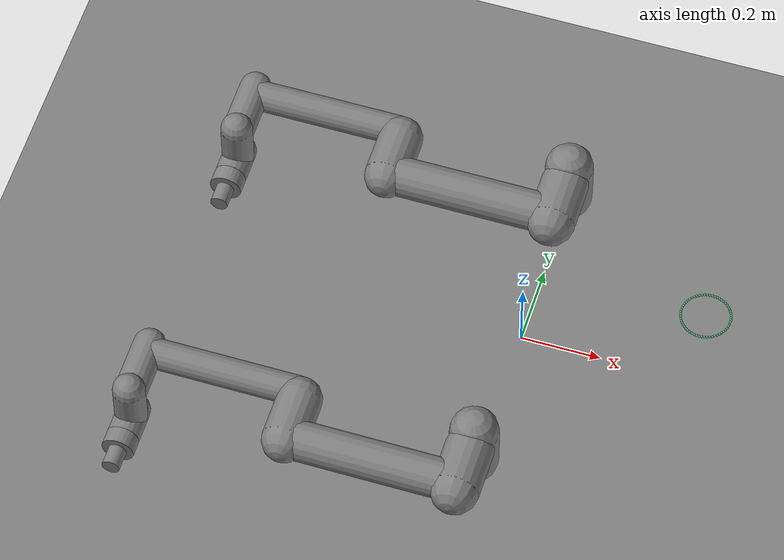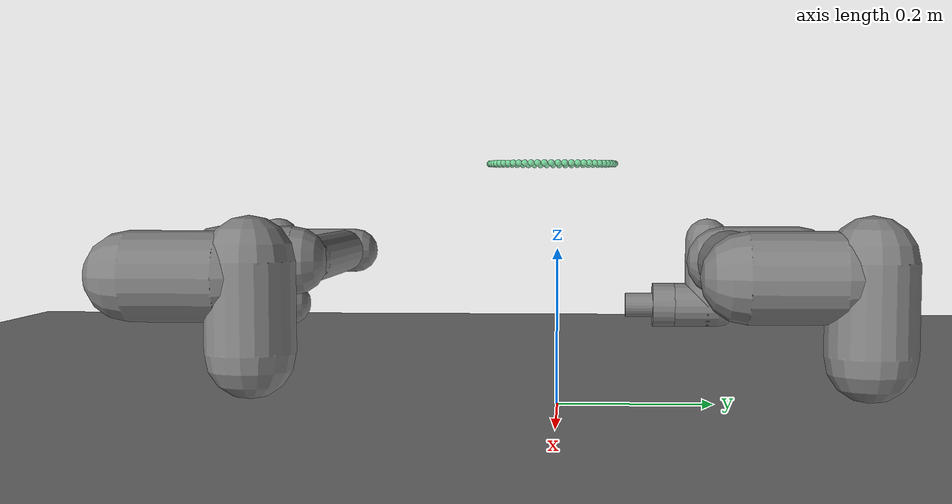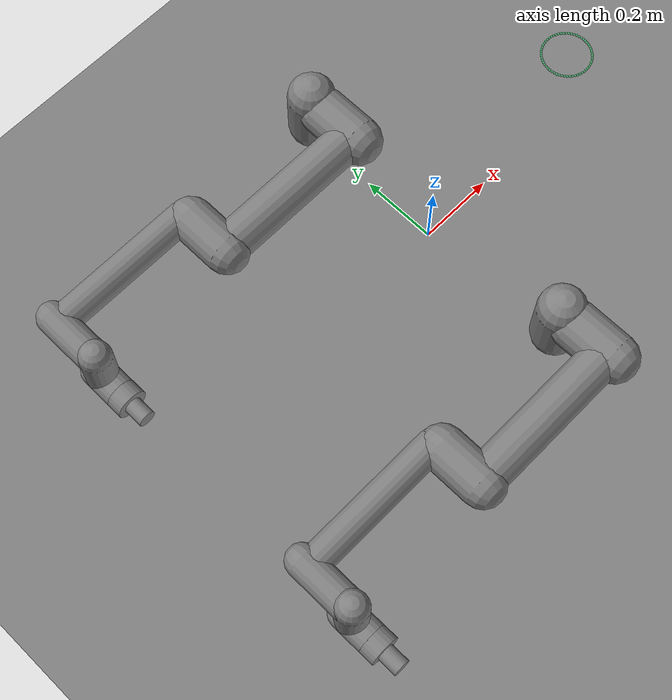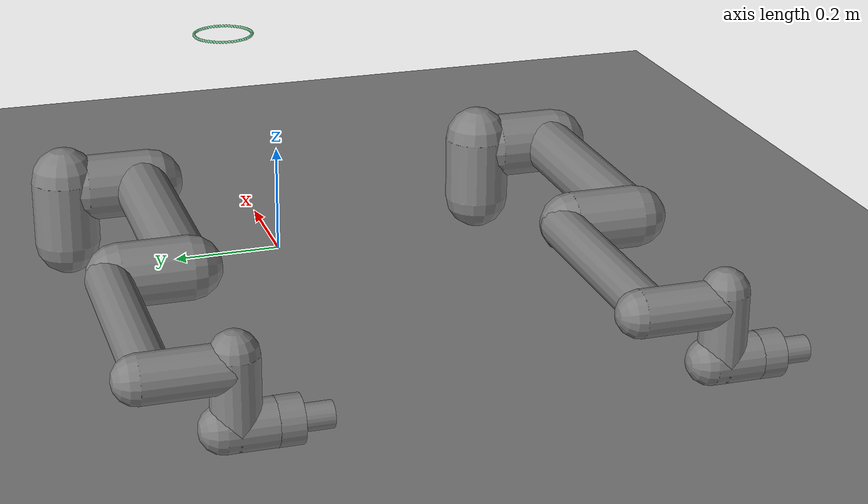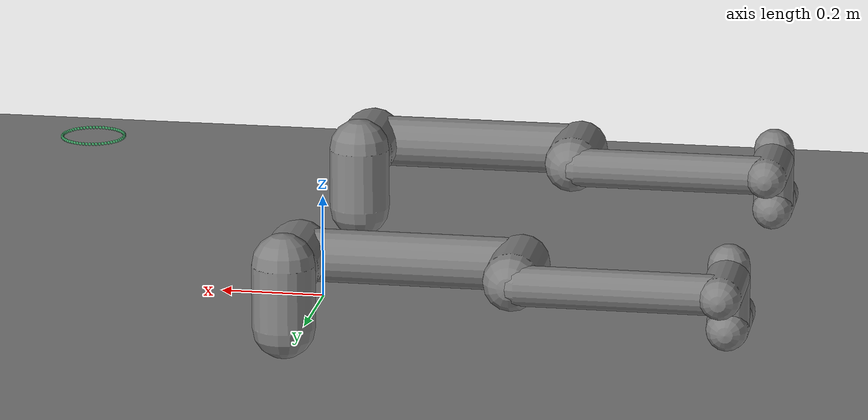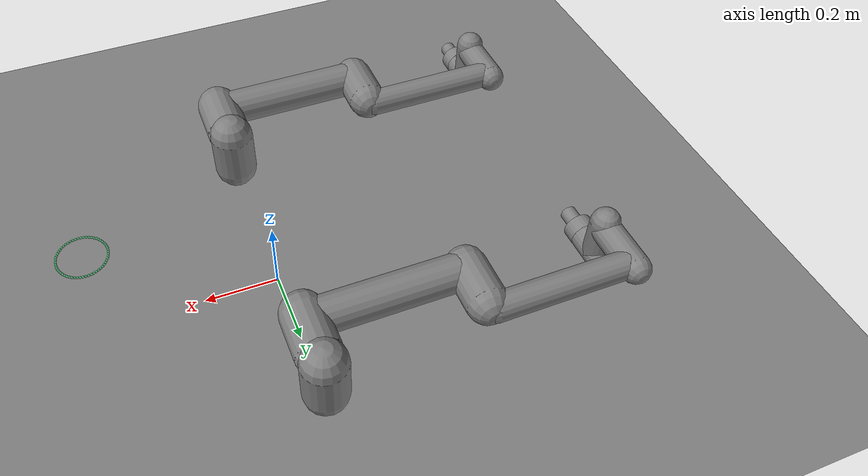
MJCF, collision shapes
<mujoco model="dual_arm_scene">
  <compiler angle="radian"/>

  <option timestep="0.005" integrator="implicitfast"/>

  <visual>
    <global offwidth="960" offheight="720"/>
  </visual>

  <default>
    <default class="armA_main">
      <default class="armA_ur5e">
        <material shininess="0.25"/>
        <joint range="-6.28319 6.28319" armature="0.1"/>
        <site size="0.001 0.005 0.005" group="4" rgba="0.5 0.5 0.5 0.3"/>
        <general ctrlrange="-6.2831 6.2831" forcerange="-150 150" biastype="affine" gainprm="2000" biasprm="0 -2000 -400"/>
        <default class="armA_size3">
          <default class="armA_size3_limited">
            <joint range="-3.1415 3.1415"/>
            <general ctrlrange="-3.1415 3.1415"/>
          </default>
        </default>
        <default class="armA_size1">
          <general forcerange="-28 28" gainprm="500" biasprm="0 -500 -100"/>
        </default>
        <default class="armA_visual">
          <geom type="mesh" contype="0" conaffinity="0" group="2"/>
        </default>
        <default class="armA_collision">
          <geom type="capsule" group="3"/>
          <default class="armA_eef_collision">
            <geom type="cylinder"/>
          </default>
        </default>
      </default>
    </default>
    <default class="armB_main">
      <default class="armB_ur5e">
        <material shininess="0.25"/>
        <joint range="-6.28319 6.28319" armature="0.1"/>
        <site size="0.001 0.005 0.005" group="4" rgba="0.5 0.5 0.5 0.3"/>
        <general ctrlrange="-6.2831 6.2831" forcerange="-150 150" biastype="affine" gainprm="2000" biasprm="0 -2000 -400"/>
        <default class="armB_size3">
          <default class="armB_size3_limited">
            <joint range="-3.1415 3.1415"/>
            <general ctrlrange="-3.1415 3.1415"/>
          </default>
        </default>
        <default class="armB_size1">
          <general forcerange="-28 28" gainprm="500" biasprm="0 -500 -100"/>
        </default>
        <default class="armB_visual">
          <geom type="mesh" contype="0" conaffinity="0" group="2"/>
        </default>
        <default class="armB_collision">
          <geom type="capsule" group="3"/>
          <default class="armB_eef_collision">
            <geom type="cylinder"/>
          </default>
        </default>
      </default>
    </default>
  </default>

  <asset>
    <material name="armA_black" class="armA_ur5e" rgba="0.033 0.033 0.033 1"/>
    <material name="armA_jointgray" class="armA_ur5e" rgba="0.278 0.278 0.278 1"/>
    <material name="armA_linkgray" class="armA_ur5e" rgba="0.82 0.82 0.82 1"/>
    <material name="armA_urblue" class="armA_ur5e" rgba="0.49 0.678 0.8 1"/>
    <material name="armB_black" class="armB_ur5e" rgba="0.033 0.033 0.033 1"/>
    <material name="armB_jointgray" class="armB_ur5e" rgba="0.278 0.278 0.278 1"/>
    <material name="armB_linkgray" class="armB_ur5e" rgba="0.82 0.82 0.82 1"/>
    <material name="armB_urblue" class="armB_ur5e" rgba="0.49 0.678 0.8 1"/>
    <mesh name="armA_base_0" content_type="model/obj" file="C:\Users/aarl0/OneDrive - University of Nebraska/Desktop/PhD/Job/Untitled Folder/manipulator/ur5e_pick_place/ur5e_pick_place/model/assets/base_0.obj"/>
    <mesh name="armA_base_1" content_type="model/obj" file="C:\Users/aarl0/OneDrive - University of Nebraska/Desktop/PhD/Job/Untitled Folder/manipulator/ur5e_pick_place/ur5e_pick_place/model/assets/base_1.obj"/>
    <mesh name="armA_shoulder_0" content_type="model/obj" file="C:\Users/aarl0/OneDrive - University of Nebraska/Desktop/PhD/Job/Untitled Folder/manipulator/ur5e_pick_place/ur5e_pick_place/model/assets/shoulder_0.obj"/>
    <mesh name="armA_shoulder_1" content_type="model/obj" file="C:\Users/aarl0/OneDrive - University of Nebraska/Desktop/PhD/Job/Untitled Folder/manipulator/ur5e_pick_place/ur5e_pick_place/model/assets/shoulder_1.obj"/>
    <mesh name="armA_shoulder_2" content_type="model/obj" file="C:\Users/aarl0/OneDrive - University of Nebraska/Desktop/PhD/Job/Untitled Folder/manipulator/ur5e_pick_place/ur5e_pick_place/model/assets/shoulder_2.obj"/>
    <mesh name="armA_upperarm_0" content_type="model/obj" file="C:\Users/aarl0/OneDrive - University of Nebraska/Desktop/PhD/Job/Untitled Folder/manipulator/ur5e_pick_place/ur5e_pick_place/model/assets/upperarm_0.obj"/>
    <mesh name="armA_upperarm_1" content_type="model/obj" file="C:\Users/aarl0/OneDrive - University of Nebraska/Desktop/PhD/Job/Untitled Folder/manipulator/ur5e_pick_place/ur5e_pick_place/model/assets/upperarm_1.obj"/>
    <mesh name="armA_upperarm_2" content_type="model/obj" file="C:\Users/aarl0/OneDrive - University of Nebraska/Desktop/PhD/Job/Untitled Folder/manipulator/ur5e_pick_place/ur5e_pick_place/model/assets/upperarm_2.obj"/>
    <mesh name="armA_upperarm_3" content_type="model/obj" file="C:\Users/aarl0/OneDrive - University of Nebraska/Desktop/PhD/Job/Untitled Folder/manipulator/ur5e_pick_place/ur5e_pick_place/model/assets/upperarm_3.obj"/>
    <mesh name="armA_forearm_0" content_type="model/obj" file="C:\Users/aarl0/OneDrive - University of Nebraska/Desktop/PhD/Job/Untitled Folder/manipulator/ur5e_pick_place/ur5e_pick_place/model/assets/forearm_0.obj"/>
    <mesh name="armA_forearm_1" content_type="model/obj" file="C:\Users/aarl0/OneDrive - University of Nebraska/Desktop/PhD/Job/Untitled Folder/manipulator/ur5e_pick_place/ur5e_pick_place/model/assets/forearm_1.obj"/>
    <mesh name="armA_forearm_2" content_type="model/obj" file="C:\Users/aarl0/OneDrive - University of Nebraska/Desktop/PhD/Job/Untitled Folder/manipulator/ur5e_pick_place/ur5e_pick_place/model/assets/forearm_2.obj"/>
    <mesh name="armA_forearm_3" content_type="model/obj" file="C:\Users/aarl0/OneDrive - University of Nebraska/Desktop/PhD/Job/Untitled Folder/manipulator/ur5e_pick_place/ur5e_pick_place/model/assets/forearm_3.obj"/>
    <mesh name="armA_wrist1_0" content_type="model/obj" file="C:\Users/aarl0/OneDrive - University of Nebraska/Desktop/PhD/Job/Untitled Folder/manipulator/ur5e_pick_place/ur5e_pick_place/model/assets/wrist1_0.obj"/>
    <mesh name="armA_wrist1_1" content_type="model/obj" file="C:\Users/aarl0/OneDrive - University of Nebraska/Desktop/PhD/Job/Untitled Folder/manipulator/ur5e_pick_place/ur5e_pick_place/model/assets/wrist1_1.obj"/>
    <mesh name="armA_wrist1_2" content_type="model/obj" file="C:\Users/aarl0/OneDrive - University of Nebraska/Desktop/PhD/Job/Untitled Folder/manipulator/ur5e_pick_place/ur5e_pick_place/model/assets/wrist1_2.obj"/>
    <mesh name="armA_wrist2_0" content_type="model/obj" file="C:\Users/aarl0/OneDrive - University of Nebraska/Desktop/PhD/Job/Untitled Folder/manipulator/ur5e_pick_place/ur5e_pick_place/model/assets/wrist2_0.obj"/>
    <mesh name="armA_wrist2_1" content_type="model/obj" file="C:\Users/aarl0/OneDrive - University of Nebraska/Desktop/PhD/Job/Untitled Folder/manipulator/ur5e_pick_place/ur5e_pick_place/model/assets/wrist2_1.obj"/>
    <mesh name="armA_wrist2_2" content_type="model/obj" file="C:\Users/aarl0/OneDrive - University of Nebraska/Desktop/PhD/Job/Untitled Folder/manipulator/ur5e_pick_place/ur5e_pick_place/model/assets/wrist2_2.obj"/>
    <mesh name="armA_wrist3" content_type="model/obj" file="C:\Users/aarl0/OneDrive - University of Nebraska/Desktop/PhD/Job/Untitled Folder/manipulator/ur5e_pick_place/ur5e_pick_place/model/assets/wrist3.obj"/>
    <mesh name="armB_base_0" file="C:\Users/aarl0/OneDrive - University of Nebraska/Desktop/PhD/Job/Untitled Folder/manipulator/ur5e_pick_place/ur5e_pick_place/model/assets/base_0.obj"/>
    <mesh name="armB_base_1" file="C:\Users/aarl0/OneDrive - University of Nebraska/Desktop/PhD/Job/Untitled Folder/manipulator/ur5e_pick_place/ur5e_pick_place/model/assets/base_1.obj"/>
    <mesh name="armB_shoulder_0" file="C:\Users/aarl0/OneDrive - University of Nebraska/Desktop/PhD/Job/Untitled Folder/manipulator/ur5e_pick_place/ur5e_pick_place/model/assets/shoulder_0.obj"/>
    <mesh name="armB_shoulder_1" file="C:\Users/aarl0/OneDrive - University of Nebraska/Desktop/PhD/Job/Untitled Folder/manipulator/ur5e_pick_place/ur5e_pick_place/model/assets/shoulder_1.obj"/>
    <mesh name="armB_shoulder_2" file="C:\Users/aarl0/OneDrive - University of Nebraska/Desktop/PhD/Job/Untitled Folder/manipulator/ur5e_pick_place/ur5e_pick_place/model/assets/shoulder_2.obj"/>
    <mesh name="armB_upperarm_0" file="C:\Users/aarl0/OneDrive - University of Nebraska/Desktop/PhD/Job/Untitled Folder/manipulator/ur5e_pick_place/ur5e_pick_place/model/assets/upperarm_0.obj"/>
    <mesh name="armB_upperarm_1" file="C:\Users/aarl0/OneDrive - University of Nebraska/Desktop/PhD/Job/Untitled Folder/manipulator/ur5e_pick_place/ur5e_pick_place/model/assets/upperarm_1.obj"/>
    <mesh name="armB_upperarm_2" file="C:\Users/aarl0/OneDrive - University of Nebraska/Desktop/PhD/Job/Untitled Folder/manipulator/ur5e_pick_place/ur5e_pick_place/model/assets/upperarm_2.obj"/>
    <mesh name="armB_upperarm_3" file="C:\Users/aarl0/OneDrive - University of Nebraska/Desktop/PhD/Job/Untitled Folder/manipulator/ur5e_pick_place/ur5e_pick_place/model/assets/upperarm_3.obj"/>
    <mesh name="armB_forearm_0" file="C:\Users/aarl0/OneDrive - University of Nebraska/Desktop/PhD/Job/Untitled Folder/manipulator/ur5e_pick_place/ur5e_pick_place/model/assets/forearm_0.obj"/>
    <mesh name="armB_forearm_1" file="C:\Users/aarl0/OneDrive - University of Nebraska/Desktop/PhD/Job/Untitled Folder/manipulator/ur5e_pick_place/ur5e_pick_place/model/assets/forearm_1.obj"/>
    <mesh name="armB_forearm_2" file="C:\Users/aarl0/OneDrive - University of Nebraska/Desktop/PhD/Job/Untitled Folder/manipulator/ur5e_pick_place/ur5e_pick_place/model/assets/forearm_2.obj"/>
    <mesh name="armB_forearm_3" file="C:\Users/aarl0/OneDrive - University of Nebraska/Desktop/PhD/Job/Untitled Folder/manipulator/ur5e_pick_place/ur5e_pick_place/model/assets/forearm_3.obj"/>
    <mesh name="armB_wrist1_0" file="C:\Users/aarl0/OneDrive - University of Nebraska/Desktop/PhD/Job/Untitled Folder/manipulator/ur5e_pick_place/ur5e_pick_place/model/assets/wrist1_0.obj"/>
    <mesh name="armB_wrist1_1" file="C:\Users/aarl0/OneDrive - University of Nebraska/Desktop/PhD/Job/Untitled Folder/manipulator/ur5e_pick_place/ur5e_pick_place/model/assets/wrist1_1.obj"/>
    <mesh name="armB_wrist1_2" file="C:\Users/aarl0/OneDrive - University of Nebraska/Desktop/PhD/Job/Untitled Folder/manipulator/ur5e_pick_place/ur5e_pick_place/model/assets/wrist1_2.obj"/>
    <mesh name="armB_wrist2_0" file="C:\Users/aarl0/OneDrive - University of Nebraska/Desktop/PhD/Job/Untitled Folder/manipulator/ur5e_pick_place/ur5e_pick_place/model/assets/wrist2_0.obj"/>
    <mesh name="armB_wrist2_1" content_type="model/obj" file="C:\Users/aarl0/OneDrive - University of Nebraska/Desktop/PhD/Job/Untitled Folder/manipulator/ur5e_pick_place/ur5e_pick_place/model/assets/wrist2_1.obj"/>
    <mesh name="armB_wrist2_2" content_type="model/obj" file="C:\Users/aarl0/OneDrive - University of Nebraska/Desktop/PhD/Job/Untitled Folder/manipulator/ur5e_pick_place/ur5e_pick_place/model/assets/wrist2_2.obj"/>
    <mesh name="armB_wrist3" file="C:\Users/aarl0/OneDrive - University of Nebraska/Desktop/PhD/Job/Untitled Folder/manipulator/ur5e_pick_place/ur5e_pick_place/model/assets/wrist3.obj"/>
  </asset>

  <worldbody>
    <geom size="2 2 0.1" type="plane"/>
    <site name="path_marker_0" pos="0.51 0 0.3" size="0.003" rgba="0.2 0.85 0.45 0.6"/>
    <site name="path_marker_1" pos="0.509671 0.00627171 0.3" size="0.003" rgba="0.2 0.85 0.45 0.6"/>
    <site name="path_marker_2" pos="0.508689 0.0124747 0.3" size="0.003" rgba="0.2 0.85 0.45 0.6"/>
    <site name="path_marker_3" pos="0.507063 0.018541 0.3" size="0.003" rgba="0.2 0.85 0.45 0.6"/>
    <site name="path_marker_4" pos="0.504813 0.0244042 0.3" size="0.003" rgba="0.2 0.85 0.45 0.6"/>
    <site name="path_marker_5" pos="0.501962 0.03 0.3" size="0.003" rgba="0.2 0.85 0.45 0.6"/>
    <site name="path_marker_6" pos="0.498541 0.0352671 0.3" size="0.003" rgba="0.2 0.85 0.45 0.6"/>
    <site name="path_marker_7" pos="0.494589 0.0401478 0.3" size="0.003" rgba="0.2 0.85 0.45 0.6"/>
    <site name="path_marker_8" pos="0.490148 0.0445887 0.3" size="0.003" rgba="0.2 0.85 0.45 0.6"/>
    <site name="path_marker_9" pos="0.485267 0.048541 0.3" size="0.003" rgba="0.2 0.85 0.45 0.6"/>
    <site name="path_marker_10" pos="0.48 0.0519615 0.3" size="0.003" rgba="0.2 0.85 0.45 0.6"/>
    <site name="path_marker_11" pos="0.474404 0.0548127 0.3" size="0.003" rgba="0.2 0.85 0.45 0.6"/>
    <site name="path_marker_12" pos="0.468541 0.0570634 0.3" size="0.003" rgba="0.2 0.85 0.45 0.6"/>
    <site name="path_marker_13" pos="0.462475 0.0586889 0.3" size="0.003" rgba="0.2 0.85 0.45 0.6"/>
    <site name="path_marker_14" pos="0.456272 0.0596713 0.3" size="0.003" rgba="0.2 0.85 0.45 0.6"/>
    <site name="path_marker_15" pos="0.45 0.06 0.3" size="0.003" rgba="0.2 0.85 0.45 0.6"/>
    <site name="path_marker_16" pos="0.443728 0.0596713 0.3" size="0.003" rgba="0.2 0.85 0.45 0.6"/>
    <site name="path_marker_17" pos="0.437525 0.0586889 0.3" size="0.003" rgba="0.2 0.85 0.45 0.6"/>
    <site name="path_marker_18" pos="0.431459 0.0570634 0.3" size="0.003" rgba="0.2 0.85 0.45 0.6"/>
    <site name="path_marker_19" pos="0.425596 0.0548127 0.3" size="0.003" rgba="0.2 0.85 0.45 0.6"/>
    <site name="path_marker_20" pos="0.42 0.0519615 0.3" size="0.003" rgba="0.2 0.85 0.45 0.6"/>
    <site name="path_marker_21" pos="0.414733 0.048541 0.3" size="0.003" rgba="0.2 0.85 0.45 0.6"/>
    <site name="path_marker_22" pos="0.409852 0.0445887 0.3" size="0.003" rgba="0.2 0.85 0.45 0.6"/>
    <site name="path_marker_23" pos="0.405411 0.0401478 0.3" size="0.003" rgba="0.2 0.85 0.45 0.6"/>
    <site name="path_marker_24" pos="0.401459 0.0352671 0.3" size="0.003" rgba="0.2 0.85 0.45 0.6"/>
    <site name="path_marker_25" pos="0.398038 0.03 0.3" size="0.003" rgba="0.2 0.85 0.45 0.6"/>
    <site name="path_marker_26" pos="0.395187 0.0244042 0.3" size="0.003" rgba="0.2 0.85 0.45 0.6"/>
    <site name="path_marker_27" pos="0.392937 0.018541 0.3" size="0.003" rgba="0.2 0.85 0.45 0.6"/>
    <site name="path_marker_28" pos="0.391311 0.0124747 0.3" size="0.003" rgba="0.2 0.85 0.45 0.6"/>
    <site name="path_marker_29" pos="0.390329 0.00627171 0.3" size="0.003" rgba="0.2 0.85 0.45 0.6"/>
    <site name="path_marker_30" pos="0.39 0 0.3" size="0.003" rgba="0.2 0.85 0.45 0.6"/>
    <site name="path_marker_31" pos="0.390329 -0.00627171 0.3" size="0.003" rgba="0.2 0.85 0.45 0.6"/>
    <site name="path_marker_32" pos="0.391311 -0.0124747 0.3" size="0.003" rgba="0.2 0.85 0.45 0.6"/>
    <site name="path_marker_33" pos="0.392937 -0.018541 0.3" size="0.003" rgba="0.2 0.85 0.45 0.6"/>
    <site name="path_marker_34" pos="0.395187 -0.0244042 0.3" size="0.003" rgba="0.2 0.85 0.45 0.6"/>
    <site name="path_marker_35" pos="0.398038 -0.03 0.3" size="0.003" rgba="0.2 0.85 0.45 0.6"/>
    <site name="path_marker_36" pos="0.401459 -0.0352671 0.3" size="0.003" rgba="0.2 0.85 0.45 0.6"/>
    <site name="path_marker_37" pos="0.405411 -0.0401478 0.3" size="0.003" rgba="0.2 0.85 0.45 0.6"/>
    <site name="path_marker_38" pos="0.409852 -0.0445887 0.3" size="0.003" rgba="0.2 0.85 0.45 0.6"/>
    <site name="path_marker_39" pos="0.414733 -0.048541 0.3" size="0.003" rgba="0.2 0.85 0.45 0.6"/>
    <site name="path_marker_40" pos="0.42 -0.0519615 0.3" size="0.003" rgba="0.2 0.85 0.45 0.6"/>
    <site name="path_marker_41" pos="0.425596 -0.0548127 0.3" size="0.003" rgba="0.2 0.85 0.45 0.6"/>
    <site name="path_marker_42" pos="0.431459 -0.0570634 0.3" size="0.003" rgba="0.2 0.85 0.45 0.6"/>
    <site name="path_marker_43" pos="0.437525 -0.0586889 0.3" size="0.003" rgba="0.2 0.85 0.45 0.6"/>
    <site name="path_marker_44" pos="0.443728 -0.0596713 0.3" size="0.003" rgba="0.2 0.85 0.45 0.6"/>
    <site name="path_marker_45" pos="0.45 -0.06 0.3" size="0.003" rgba="0.2 0.85 0.45 0.6"/>
    <site name="path_marker_46" pos="0.456272 -0.0596713 0.3" size="0.003" rgba="0.2 0.85 0.45 0.6"/>
    <site name="path_marker_47" pos="0.462475 -0.0586889 0.3" size="0.003" rgba="0.2 0.85 0.45 0.6"/>
    <site name="path_marker_48" pos="0.468541 -0.0570634 0.3" size="0.003" rgba="0.2 0.85 0.45 0.6"/>
    <site name="path_marker_49" pos="0.474404 -0.0548127 0.3" size="0.003" rgba="0.2 0.85 0.45 0.6"/>
    <site name="path_marker_50" pos="0.48 -0.0519615 0.3" size="0.003" rgba="0.2 0.85 0.45 0.6"/>
    <site name="path_marker_51" pos="0.485267 -0.048541 0.3" size="0.003" rgba="0.2 0.85 0.45 0.6"/>
    <site name="path_marker_52" pos="0.490148 -0.0445887 0.3" size="0.003" rgba="0.2 0.85 0.45 0.6"/>
    <site name="path_marker_53" pos="0.494589 -0.0401478 0.3" size="0.003" rgba="0.2 0.85 0.45 0.6"/>
    <site name="path_marker_54" pos="0.498541 -0.0352671 0.3" size="0.003" rgba="0.2 0.85 0.45 0.6"/>
    <site name="path_marker_55" pos="0.501962 -0.03 0.3" size="0.003" rgba="0.2 0.85 0.45 0.6"/>
    <site name="path_marker_56" pos="0.504813 -0.0244042 0.3" size="0.003" rgba="0.2 0.85 0.45 0.6"/>
    <site name="path_marker_57" pos="0.507063 -0.018541 0.3" size="0.003" rgba="0.2 0.85 0.45 0.6"/>
    <site name="path_marker_58" pos="0.508689 -0.0124747 0.3" size="0.003" rgba="0.2 0.85 0.45 0.6"/>
    <site name="path_marker_59" pos="0.509671 -0.00627171 0.3" size="0.003" rgba="0.2 0.85 0.45 0.6"/>
    <light pos="1 1 3" dir="0 0 -1"/>
    <light name="armA_spotlight" target="armA_wrist_2_link" pos="0 -1.4 2" dir="0 0 -1" mode="targetbodycom"/>
    <body name="armA_base" childclass="armA_ur5e" pos="0 -0.4 0" quat="0 0 0 -1">
      <inertial pos="0 0 0" mass="4" diaginertia="0.00443333 0.00443333 0.0072"/>
      <geom class="armA_visual" material="armA_black" mesh="armA_base_0"/>
      <geom class="armA_visual" material="armA_jointgray" mesh="armA_base_1"/>
      <body name="armA_shoulder_link" pos="0 0 0.163">
        <inertial pos="0 0 0" mass="3.7" diaginertia="0.0102675 0.0102675 0.00666"/>
        <joint name="armA_shoulder_pan_joint" class="armA_size3" pos="0 0 0" axis="0 0 1"/>
        <geom class="armA_visual" material="armA_urblue" mesh="armA_shoulder_0"/>
        <geom class="armA_visual" material="armA_black" mesh="armA_shoulder_1"/>
        <geom class="armA_visual" material="armA_jointgray" mesh="armA_shoulder_2"/>
        <geom class="armA_collision" size="0.06 0.06" pos="0 0 -0.04"/>
        <body name="armA_upper_arm_link" pos="0 0.138 0" quat="0.707107 0 0.707107 0">
          <inertial pos="0 0 0.2125" mass="8.393" diaginertia="0.133886 0.133886 0.0151074"/>
          <joint name="armA_shoulder_lift_joint" class="armA_size3" pos="0 0 0" axis="0 1 0"/>
          <geom class="armA_visual" material="armA_linkgray" mesh="armA_upperarm_0"/>
          <geom class="armA_visual" material="armA_black" mesh="armA_upperarm_1"/>
          <geom class="armA_visual" material="armA_jointgray" mesh="armA_upperarm_2"/>
          <geom class="armA_visual" material="armA_urblue" mesh="armA_upperarm_3"/>
          <geom class="armA_collision" size="0.06 0.06" pos="0 -0.04 0" quat="0.707107 0.707107 0 0"/>
          <geom class="armA_collision" size="0.05 0.2" pos="0 0 0.2"/>
          <body name="armA_forearm_link" pos="0 -0.131 0.425">
            <inertial pos="0 0 0.196" mass="2.275" diaginertia="0.0311796 0.0311796 0.004095"/>
            <joint name="armA_elbow_joint" class="armA_size3_limited" pos="0 0 0" axis="0 1 0"/>
            <geom class="armA_visual" material="armA_urblue" mesh="armA_forearm_0"/>
            <geom class="armA_visual" material="armA_linkgray" mesh="armA_forearm_1"/>
            <geom class="armA_visual" material="armA_black" mesh="armA_forearm_2"/>
            <geom class="armA_visual" material="armA_jointgray" mesh="armA_forearm_3"/>
            <geom class="armA_collision" size="0.055 0.06" pos="0 0.08 0" quat="0.707107 0.707107 0 0"/>
            <geom class="armA_collision" size="0.038 0.19" pos="0 0 0.2"/>
            <body name="armA_wrist_1_link" pos="0 0 0.392" quat="0.707107 0 0.707107 0">
              <inertial pos="0 0.127 0" mass="1.219" diaginertia="0.0025599 0.0025599 0.0021942"/>
              <joint name="armA_wrist_1_joint" class="armA_size1" pos="0 0 0" axis="0 1 0"/>
              <geom class="armA_visual" material="armA_black" mesh="armA_wrist1_0"/>
              <geom class="armA_visual" material="armA_urblue" mesh="armA_wrist1_1"/>
              <geom class="armA_visual" material="armA_jointgray" mesh="armA_wrist1_2"/>
              <geom class="armA_collision" size="0.04 0.07" pos="0 0.05 0" quat="0.707107 0.707107 0 0"/>
              <body name="armA_wrist_2_link" pos="0 0.127 0">
                <inertial pos="0 0 0.1" mass="1.219" diaginertia="0.0025599 0.0025599 0.0021942"/>
                <joint name="armA_wrist_2_joint" class="armA_size1" pos="0 0 0" axis="0 0 1"/>
                <geom class="armA_visual" material="armA_black" mesh="armA_wrist2_0"/>
                <geom class="armA_visual" material="armA_urblue" mesh="armA_wrist2_1"/>
                <geom class="armA_visual" material="armA_jointgray" mesh="armA_wrist2_2"/>
                <geom class="armA_collision" size="0.04 0.06" pos="0 0 0.04"/>
                <geom class="armA_collision" size="0.04 0.04" pos="0 0.02 0.1" quat="0.707107 0.707107 0 0"/>
                <body name="armA_wrist_3_link" pos="0 0 0.1">
                  <inertial pos="0 0.0771683 0" quat="0.707107 0 0 0.707107" mass="0.1889" diaginertia="0.000132134 9.90863e-05 9.90863e-05"/>
                  <joint name="armA_wrist_3_joint" class="armA_size1" pos="0 0 0" axis="0 1 0"/>
                  <geom class="armA_visual" material="armA_linkgray" mesh="armA_wrist3"/>
                  <geom class="armA_eef_collision" size="0.04 0.02" pos="0 0.08 0" quat="0.707107 0.707107 0 0"/>
                  <site name="armA_attachment_site" pos="0 0.1 0" quat="-0.707107 0.707107 0 0"/>
                  <body name="armA_suction_cup" pos="0 0.1 0" quat="-0.707107 0.707107 0 0">
                    <geom size="0.022 0.025" pos="0 0 0.025" type="cylinder" contype="0" conaffinity="0" mass="0.05"/>
                    <site name="armA_tcp" pos="0 0 0.05" size="0.004"/>
                  </body>
                </body>
              </body>
            </body>
          </body>
        </body>
      </body>
    </body>
    <light name="armB_spotlight" target="armB_wrist_2_link" pos="0 -0.6 2" dir="0 0 -1" mode="targetbodycom"/>
    <body name="armB_base" childclass="armB_ur5e" pos="0 0.4 0" quat="0 0 0 -1">
      <inertial pos="0 0 0" mass="4" diaginertia="0.00443333 0.00443333 0.0072"/>
      <geom class="armB_visual" material="armB_black" mesh="armB_base_0"/>
      <geom class="armB_visual" material="armB_jointgray" mesh="armB_base_1"/>
      <body name="armB_shoulder_link" pos="0 0 0.163">
        <inertial pos="0 0 0" mass="3.7" diaginertia="0.0102675 0.0102675 0.00666"/>
        <joint name="armB_shoulder_pan_joint" class="armB_size3" pos="0 0 0" axis="0 0 1"/>
        <geom class="armB_visual" material="armB_urblue" mesh="armB_shoulder_0"/>
        <geom class="armB_visual" material="armB_black" mesh="armB_shoulder_1"/>
        <geom class="armB_visual" material="armB_jointgray" mesh="armB_shoulder_2"/>
        <geom class="armB_collision" size="0.06 0.06" pos="0 0 -0.04"/>
        <body name="armB_upper_arm_link" pos="0 0.138 0" quat="0.707107 0 0.707107 0">
          <inertial pos="0 0 0.2125" mass="8.393" diaginertia="0.133886 0.133886 0.0151074"/>
          <joint name="armB_shoulder_lift_joint" class="armB_size3" pos="0 0 0" axis="0 1 0"/>
          <geom class="armB_visual" material="armB_linkgray" mesh="armB_upperarm_0"/>
          <geom class="armB_visual" material="armB_black" mesh="armB_upperarm_1"/>
          <geom class="armB_visual" material="armB_jointgray" mesh="armB_upperarm_2"/>
          <geom class="armB_visual" material="armB_urblue" mesh="armB_upperarm_3"/>
          <geom class="armB_collision" size="0.06 0.06" pos="0 -0.04 0" quat="0.707107 0.707107 0 0"/>
          <geom class="armB_collision" size="0.05 0.2" pos="0 0 0.2"/>
          <body name="armB_forearm_link" pos="0 -0.131 0.425">
            <inertial pos="0 0 0.196" mass="2.275" diaginertia="0.0311796 0.0311796 0.004095"/>
            <joint name="armB_elbow_joint" class="armB_size3_limited" pos="0 0 0" axis="0 1 0"/>
            <geom class="armB_visual" material="armB_urblue" mesh="armB_forearm_0"/>
            <geom class="armB_visual" material="armB_linkgray" mesh="armB_forearm_1"/>
            <geom class="armB_visual" material="armB_black" mesh="armB_forearm_2"/>
            <geom class="armB_visual" material="armB_jointgray" mesh="armB_forearm_3"/>
            <geom class="armB_collision" size="0.055 0.06" pos="0 0.08 0" quat="0.707107 0.707107 0 0"/>
            <geom class="armB_collision" size="0.038 0.19" pos="0 0 0.2"/>
            <body name="armB_wrist_1_link" pos="0 0 0.392" quat="0.707107 0 0.707107 0">
              <inertial pos="0 0.127 0" mass="1.219" diaginertia="0.0025599 0.0025599 0.0021942"/>
              <joint name="armB_wrist_1_joint" class="armB_size1" pos="0 0 0" axis="0 1 0"/>
              <geom class="armB_visual" material="armB_black" mesh="armB_wrist1_0"/>
              <geom class="armB_visual" material="armB_urblue" mesh="armB_wrist1_1"/>
              <geom class="armB_visual" material="armB_jointgray" mesh="armB_wrist1_2"/>
              <geom class="armB_collision" size="0.04 0.07" pos="0 0.05 0" quat="0.707107 0.707107 0 0"/>
              <body name="armB_wrist_2_link" pos="0 0.127 0">
                <inertial pos="0 0 0.1" mass="1.219" diaginertia="0.0025599 0.0025599 0.0021942"/>
                <joint name="armB_wrist_2_joint" class="armB_size1" pos="0 0 0" axis="0 0 1"/>
                <geom class="armB_visual" material="armB_black" mesh="armB_wrist2_0"/>
                <geom class="armB_visual" material="armB_urblue" mesh="armB_wrist2_1"/>
                <geom class="armB_visual" material="armB_jointgray" mesh="armB_wrist2_2"/>
                <geom class="armB_collision" size="0.04 0.06" pos="0 0 0.04"/>
                <geom class="armB_collision" size="0.04 0.04" pos="0 0.02 0.1" quat="0.707107 0.707107 0 0"/>
                <body name="armB_wrist_3_link" pos="0 0 0.1">
                  <inertial pos="0 0.0771683 0" quat="0.707107 0 0 0.707107" mass="0.1889" diaginertia="0.000132134 9.90863e-05 9.90863e-05"/>
                  <joint name="armB_wrist_3_joint" class="armB_size1" pos="0 0 0" axis="0 1 0"/>
                  <geom class="armB_visual" material="armB_linkgray" mesh="armB_wrist3"/>
                  <geom class="armB_eef_collision" size="0.04 0.02" pos="0 0.08 0" quat="0.707107 0.707107 0 0"/>
                  <site name="armB_attachment_site" pos="0 0.1 0" quat="-0.707107 0.707107 0 0"/>
                  <body name="armB_suction_cup" pos="0 0.1 0" quat="-0.707107 0.707107 0 0">
                    <geom size="0.022 0.025" pos="0 0 0.025" type="cylinder" contype="0" conaffinity="0" mass="0.05"/>
                    <site name="armB_tcp" pos="0 0 0.05" size="0.004"/>
                  </body>
                </body>
              </body>
            </body>
          </body>
        </body>
      </body>
    </body>
  </worldbody>

  <actuator>
    <general name="armA_shoulder_pan_joint_motor" joint="armA_shoulder_pan_joint" ctrllimited="true" ctrlrange="-150 150"/>
    <general name="armA_shoulder_lift_joint_motor" joint="armA_shoulder_lift_joint" ctrllimited="true" ctrlrange="-150 150"/>
    <general name="armA_elbow_joint_motor" joint="armA_elbow_joint" ctrllimited="true" ctrlrange="-150 150"/>
    <general name="armA_wrist_1_joint_motor" joint="armA_wrist_1_joint" ctrllimited="true" ctrlrange="-28 28"/>
    <general name="armA_wrist_2_joint_motor" joint="armA_wrist_2_joint" ctrllimited="true" ctrlrange="-28 28"/>
    <general name="armA_wrist_3_joint_motor" joint="armA_wrist_3_joint" ctrllimited="true" ctrlrange="-28 28"/>
    <general name="armB_shoulder_pan_joint_motor" joint="armB_shoulder_pan_joint" ctrllimited="true" ctrlrange="-150 150"/>
    <general name="armB_shoulder_lift_joint_motor" joint="armB_shoulder_lift_joint" ctrllimited="true" ctrlrange="-150 150"/>
    <general name="armB_elbow_joint_motor" joint="armB_elbow_joint" ctrllimited="true" ctrlrange="-150 150"/>
    <general name="armB_wrist_1_joint_motor" joint="armB_wrist_1_joint" ctrllimited="true" ctrlrange="-28 28"/>
    <general name="armB_wrist_2_joint_motor" joint="armB_wrist_2_joint" ctrllimited="true" ctrlrange="-28 28"/>
    <general name="armB_wrist_3_joint_motor" joint="armB_wrist_3_joint" ctrllimited="true" ctrlrange="-28 28"/>
  </actuator>
</mujoco>
